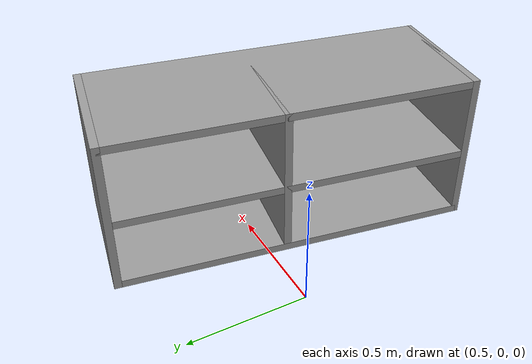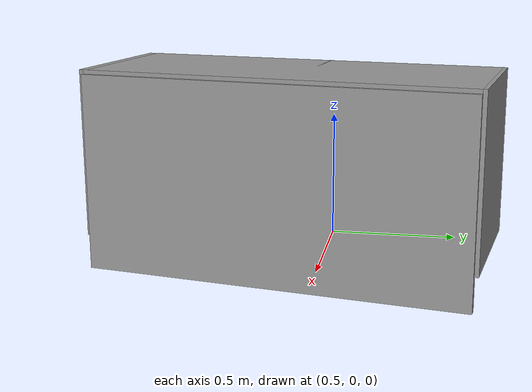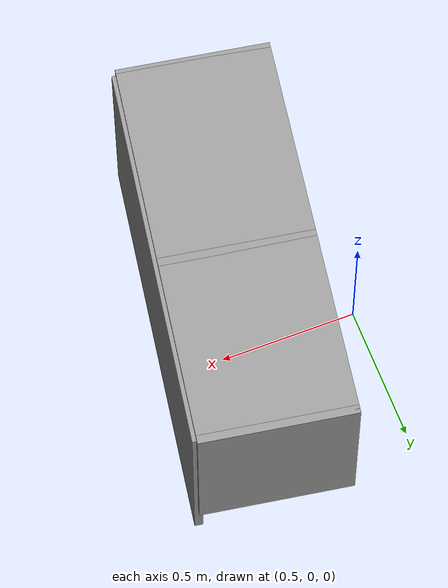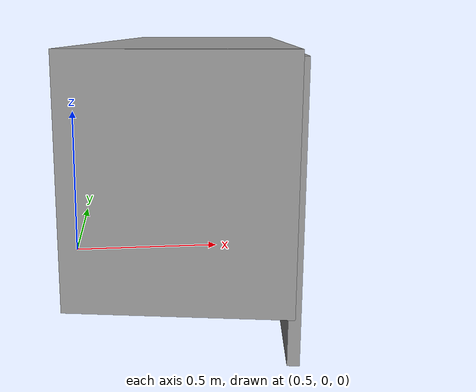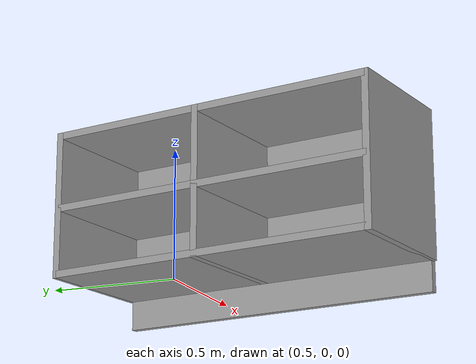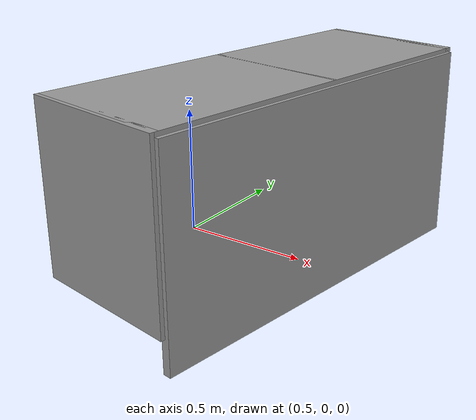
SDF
<?xml version="1.0" ?>
<sdf version="1.6">
  <model name="obstacles">
    <link name="link_0">
      <pose>1.190814282258407 -0.13550199346642616 0.3621445178050698 0.0 0.0 -0.1627865215115677</pose>
      <visual name="visual_0">
        <geometry>
          <box>
            <size>0.029816824170463455 1.4124879353697206 0.7242890356101396</size>
          </box>
        </geometry>
        <material>
          <script>
            <name>Gazebo/Grey</name>
            <uri>file://media/materials/scripts/gazebo.material</uri>
          </script>
        </material>
      </visual>
      <collision name="collision_0">
        <geometry>
          <box>
            <size>0.029816824170463455 1.4124879353697206 0.7242890356101396</size>
          </box>
        </geometry>
        <surface>
          <friction>
            <ode>
              <mu>1</mu>
              <mu2>1</mu2>
            </ode>
          </friction>
        </surface>
      </collision>
    </link>
    <static>1</static>
    <link name="link_1">
      <pose>0.9202803453390374 -0.09106954126692335 0.13820469648641495 0.0 0.0 -0.1627865215115677</pose>
      <visual name="visual_1">
        <geometry>
          <box>
            <size>0.5483168931687388 1.4124879353697206 0.029816824170463455</size>
          </box>
        </geometry>
        <material>
          <script>
            <name>Gazebo/Grey</name>
            <uri>file://media/materials/scripts/gazebo.material</uri>
          </script>
        </material>
      </visual>
      <collision name="collision_1">
        <geometry>
          <box>
            <size>0.5483168931687388 1.4124879353697206 0.029816824170463455</size>
          </box>
        </geometry>
        <surface>
          <friction>
            <ode>
              <mu>1</mu>
              <mu2>1</mu2>
            </ode>
          </friction>
        </surface>
      </collision>
    </link>
    <static>1</static>
    <link name="link_2">
      <pose>0.9202803453390374 -0.09106954126692335 0.7242890356101396 0.0 0.0 -0.1627865215115677</pose>
      <visual name="visual_2">
        <geometry>
          <box>
            <size>0.5483168931687388 1.4124879353697206 0.029816824170463455</size>
          </box>
        </geometry>
        <material>
          <script>
            <name>Gazebo/Grey</name>
            <uri>file://media/materials/scripts/gazebo.material</uri>
          </script>
        </material>
      </visual>
      <collision name="collision_2">
        <geometry>
          <box>
            <size>0.5483168931687388 1.4124879353697206 0.029816824170463455</size>
          </box>
        </geometry>
        <surface>
          <friction>
            <ode>
              <mu>1</mu>
              <mu2>1</mu2>
            </ode>
          </friction>
        </surface>
      </collision>
    </link>
    <static>1</static>
    <link name="link_3">
      <pose>0.8058204345600789 -0.7879766159302007 0.4312468660482773 0.0 0.0 -0.1627865215115677</pose>
      <visual name="visual_3">
        <geometry>
          <box>
            <size>0.5483168931687388 0.029816824170463455 0.6159011632941881</size>
          </box>
        </geometry>
        <material>
          <script>
            <name>Gazebo/Grey</name>
            <uri>file://media/materials/scripts/gazebo.material</uri>
          </script>
        </material>
      </visual>
      <collision name="collision_3">
        <geometry>
          <box>
            <size>0.5483168931687388 0.029816824170463455 0.6159011632941881</size>
          </box>
        </geometry>
        <surface>
          <friction>
            <ode>
              <mu>1</mu>
              <mu2>1</mu2>
            </ode>
          </friction>
        </surface>
      </collision>
    </link>
    <static>1</static>
    <link name="link_4">
      <pose>1.034740256117996 0.6058375333963542 0.4312468660482773 0.0 0.0 -0.1627865215115677</pose>
      <visual name="visual_4">
        <geometry>
          <box>
            <size>0.5483168931687388 0.029816824170463455 0.6159011632941881</size>
          </box>
        </geometry>
        <material>
          <script>
            <name>Gazebo/Grey</name>
            <uri>file://media/materials/scripts/gazebo.material</uri>
          </script>
        </material>
      </visual>
      <collision name="collision_4">
        <geometry>
          <box>
            <size>0.5483168931687388 0.029816824170463455 0.6159011632941881</size>
          </box>
        </geometry>
        <surface>
          <friction>
            <ode>
              <mu>1</mu>
              <mu2>1</mu2>
            </ode>
          </friction>
        </surface>
      </collision>
    </link>
    <static>1</static>
    <link name="link_5">
      <pose>0.927160824683477 -0.04917666628928477 0.4312468660482773 0.0 0.0 -0.1627865215115677</pose>
      <visual name="visual_5">
        <geometry>
          <box>
            <size>0.5483168931687388 0.029816824170463455 0.6159011632941881</size>
          </box>
        </geometry>
        <material>
          <script>
            <name>Gazebo/Grey</name>
            <uri>file://media/materials/scripts/gazebo.material</uri>
          </script>
        </material>
      </visual>
      <collision name="collision_5">
        <geometry>
          <box>
            <size>0.5483168931687388 0.029816824170463455 0.6159011632941881</size>
          </box>
        </geometry>
        <surface>
          <friction>
            <ode>
              <mu>1</mu>
              <mu2>1</mu2>
            </ode>
          </friction>
        </surface>
      </collision>
    </link>
    <static>1</static>
    <link name="link_6">
      <pose>0.9202803453390374 -0.09106954126692335 0.41456459296377046 0.0 0.0 -0.1627865215115677</pose>
      <visual name="visual_6">
        <geometry>
          <box>
            <size>0.5483168931687388 1.4124879353697206 0.029816824170463455</size>
          </box>
        </geometry>
        <material>
          <script>
            <name>Gazebo/Grey</name>
            <uri>file://media/materials/scripts/gazebo.material</uri>
          </script>
        </material>
      </visual>
      <collision name="collision_6">
        <geometry>
          <box>
            <size>0.5483168931687388 1.4124879353697206 0.029816824170463455</size>
          </box>
        </geometry>
        <surface>
          <friction>
            <ode>
              <mu>1</mu>
              <mu2>1</mu2>
            </ode>
          </friction>
        </surface>
      </collision>
    </link>
    <static>1</static>
  </model>
</sdf>
